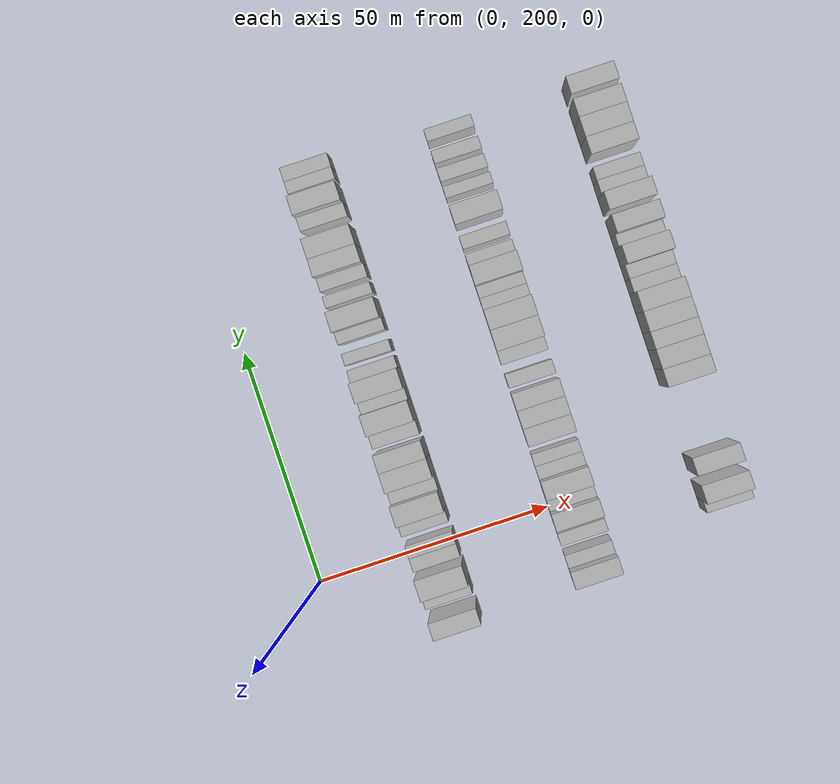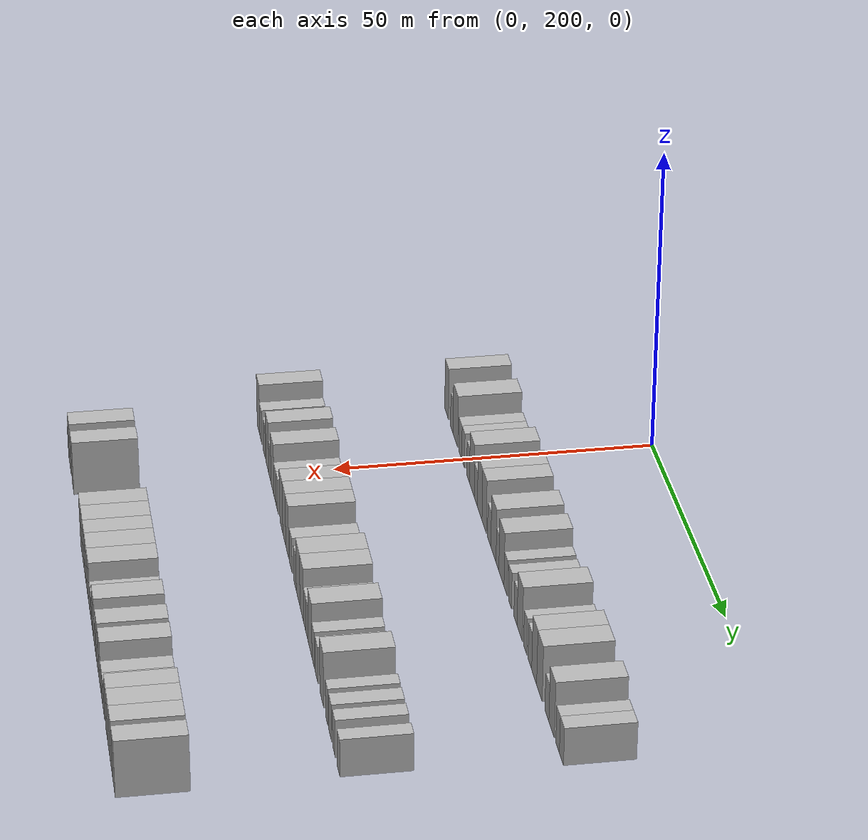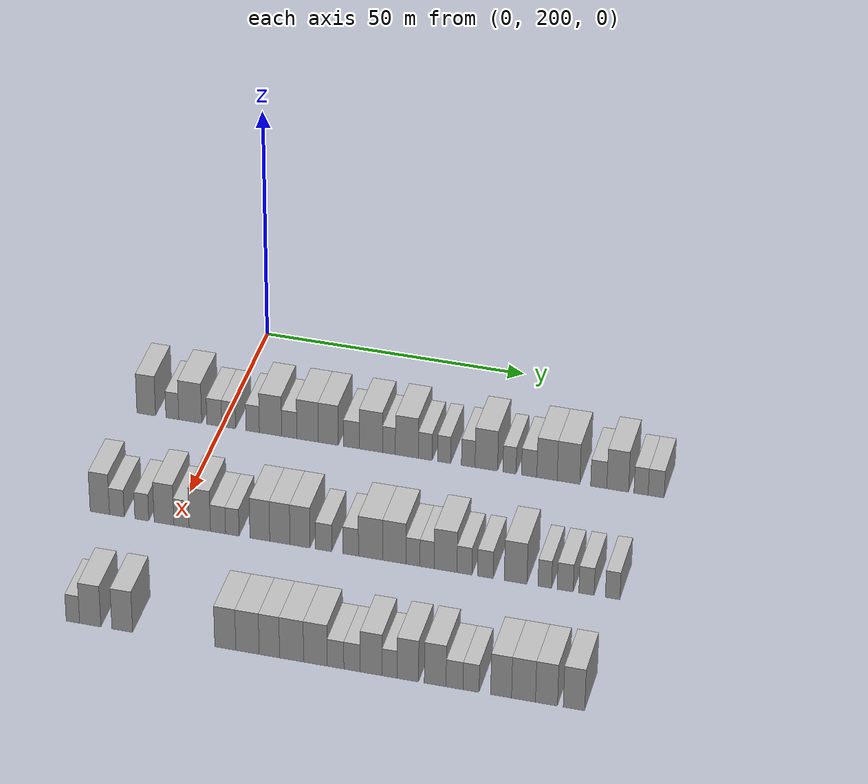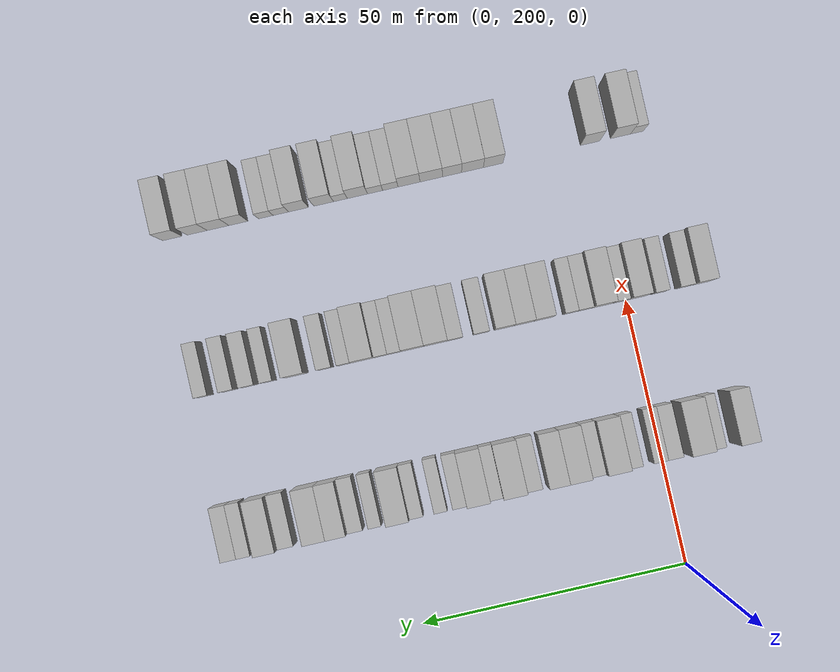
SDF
<sdf version="1.6">
 <world name="default">
  <model name="building_117">
   <static>1</static>
   <pose>25.0000 185.3387 0 0.000000 0.000000 0.000000</pose>
   <link name="link">
    <pose>0 0 4.50 0 0 0</pose>
    <collision name="collision"><geometry><box><size>10.0000 3.6014 9.0000</size></box></geometry></collision>
    <visual name="visual">
     <cast_shadows>0</cast_shadows>
     <geometry><box><size>10.0000 3.6014 9.0000</size></box></geometry>
     <material>
      <script>
       <uri>model://HANNAS_wall/materials/scripts</uri>
       <uri>model://HANNAS_wall/materials/textures</uri>
       <name>vrc/HANNAS_wall</name>
      </script>
     </material>
    </visual>
   </link>
  </model>
  <model name="building_118">
   <static>1</static>
   <pose>25.0000 190.3803 0 0.000000 0.000000 0.000000</pose>
   <link name="link">
    <pose>0 0 3.00 0 0 0</pose>
    <collision name="collision"><geometry><box><size>10.0000 2.4819 6.0000</size></box></geometry></collision>
    <visual name="visual">
     <cast_shadows>0</cast_shadows>
     <geometry><box><size>10.0000 2.4819 6.0000</size></box></geometry>
     <material>
      <script>
       <uri>model://HANNAS_wall/materials/scripts</uri>
       <uri>model://HANNAS_wall/materials/textures</uri>
       <name>vrc/HANNAS_wall</name>
      </script>
     </material>
    </visual>
   </link>
  </model>
  <model name="building_119">
   <static>1</static>
   <pose>25.0000 193.8289 0 0.000000 0.000000 0.000000</pose>
   <link name="link">
    <pose>0 0 4.50 0 0 0</pose>
    <collision name="collision"><geometry><box><size>10.0000 4.4153 9.0000</size></box></geometry></collision>
    <visual name="visual">
     <cast_shadows>0</cast_shadows>
     <geometry><box><size>10.0000 4.4153 9.0000</size></box></geometry>
     <material>
      <script>
       <uri>model://HANNAS_wall/materials/scripts</uri>
       <uri>model://HANNAS_wall/materials/textures</uri>
       <name>vrc/HANNAS_wall</name>
      </script>
     </material>
    </visual>
   </link>
  </model>
  <model name="building_120">
   <static>1</static>
   <pose>25.0000 198.4600 0 0.000000 0.000000 0.000000</pose>
   <link name="link">
    <pose>0 0 3.00 0 0 0</pose>
    <collision name="collision"><geometry><box><size>10.0000 2.8469 6.0000</size></box></geometry></collision>
    <visual name="visual">
     <cast_shadows>0</cast_shadows>
     <geometry><box><size>10.0000 2.8469 6.0000</size></box></geometry>
     <material>
      <script>
       <uri>model://HANNAS_wall/materials/scripts</uri>
       <uri>model://HANNAS_wall/materials/textures</uri>
       <name>vrc/HANNAS_wall</name>
      </script>
     </material>
    </visual>
   </link>
  </model>
  <model name="building_121">
   <static>1</static>
   <pose>25.0000 201.2084 0 0.000000 0.000000 0.000000</pose>
   <link name="link">
    <pose>0 0 3.00 0 0 0</pose>
    <collision name="collision"><geometry><box><size>10.0000 2.6499 6.0000</size></box></geometry></collision>
    <visual name="visual">
     <cast_shadows>0</cast_shadows>
     <geometry><box><size>10.0000 2.6499 6.0000</size></box></geometry>
     <material>
      <script>
       <uri>model://HANNAS_wall/materials/scripts</uri>
       <uri>model://HANNAS_wall/materials/textures</uri>
       <name>vrc/HANNAS_wall</name>
      </script>
     </material>
    </visual>
   </link>
  </model>
  <model name="building_122">
   <static>1</static>
   <pose>25.0000 205.8074 0 0.000000 0.000000 0.000000</pose>
   <link name="link">
    <pose>0 0 3.00 0 0 0</pose>
    <collision name="collision"><geometry><box><size>10.0000 2.5482 6.0000</size></box></geometry></collision>
    <visual name="visual">
     <cast_shadows>0</cast_shadows>
     <geometry><box><size>10.0000 2.5482 6.0000</size></box></geometry>
     <material>
      <script>
       <uri>model://HANNAS_wall/materials/scripts</uri>
       <uri>model://HANNAS_wall/materials/textures</uri>
       <name>vrc/HANNAS_wall</name>
      </script>
     </material>
    </visual>
   </link>
  </model>
  <model name="building_123">
   <static>1</static>
   <pose>25.0000 209.2179 0 0.000000 0.000000 0.000000</pose>
   <link name="link">
    <pose>0 0 4.50 0 0 0</pose>
    <collision name="collision"><geometry><box><size>10.0000 4.2728 9.0000</size></box></geometry></collision>
    <visual name="visual">
     <cast_shadows>0</cast_shadows>
     <geometry><box><size>10.0000 4.2728 9.0000</size></box></geometry>
     <material>
      <script>
       <uri>model://HANNAS_wall/materials/scripts</uri>
       <uri>model://HANNAS_wall/materials/textures</uri>
       <name>vrc/HANNAS_wall</name>
      </script>
     </material>
    </visual>
   </link>
  </model>
  <model name="building_124">
   <static>1</static>
   <pose>25.0000 212.7921 0 0.000000 0.000000 0.000000</pose>
   <link name="link">
    <pose>0 0 3.00 0 0 0</pose>
    <collision name="collision"><geometry><box><size>10.0000 2.8754 6.0000</size></box></geometry></collision>
    <visual name="visual">
     <cast_shadows>0</cast_shadows>
     <geometry><box><size>10.0000 2.8754 6.0000</size></box></geometry>
     <material>
      <script>
       <uri>model://HANNAS_wall/materials/scripts</uri>
       <uri>model://HANNAS_wall/materials/textures</uri>
       <name>vrc/HANNAS_wall</name>
      </script>
     </material>
    </visual>
   </link>
  </model>
  <model name="building_125">
   <static>1</static>
   <pose>25.0000 216.2802 0 0.000000 0.000000 0.000000</pose>
   <link name="link">
    <pose>0 0 4.50 0 0 0</pose>
    <collision name="collision"><geometry><box><size>10.0000 4.1009 9.0000</size></box></geometry></collision>
    <visual name="visual">
     <cast_shadows>0</cast_shadows>
     <geometry><box><size>10.0000 4.1009 9.0000</size></box></geometry>
     <material>
      <script>
       <uri>model://HANNAS_wall/materials/scripts</uri>
       <uri>model://HANNAS_wall/materials/textures</uri>
       <name>vrc/HANNAS_wall</name>
      </script>
     </material>
    </visual>
   </link>
  </model>
  <model name="building_126">
   <static>1</static>
   <pose>25.0000 220.2173 0 0.000000 0.000000 0.000000</pose>
   <link name="link">
    <pose>0 0 4.50 0 0 0</pose>
    <collision name="collision"><geometry><box><size>10.0000 3.7733 9.0000</size></box></geometry></collision>
    <visual name="visual">
     <cast_shadows>0</cast_shadows>
     <geometry><box><size>10.0000 3.7733 9.0000</size></box></geometry>
     <material>
      <script>
       <uri>model://HANNAS_wall/materials/scripts</uri>
       <uri>model://HANNAS_wall/materials/textures</uri>
       <name>vrc/HANNAS_wall</name>
      </script>
     </material>
    </visual>
   </link>
  </model>
  <model name="building_127">
   <static>1</static>
   <pose>25.0000 224.5908 0 0.000000 0.000000 0.000000</pose>
   <link name="link">
    <pose>0 0 3.00 0 0 0</pose>
    <collision name="collision"><geometry><box><size>10.0000 2.9738 6.0000</size></box></geometry></collision>
    <visual name="visual">
     <cast_shadows>0</cast_shadows>
     <geometry><box><size>10.0000 2.9738 6.0000</size></box></geometry>
     <material>
      <script>
       <uri>model://HANNAS_wall/materials/scripts</uri>
       <uri>model://HANNAS_wall/materials/textures</uri>
       <name>vrc/HANNAS_wall</name>
      </script>
     </material>
    </visual>
   </link>
  </model>
  <model name="building_128">
   <static>1</static>
   <pose>25.0000 228.2738 0 0.000000 0.000000 0.000000</pose>
   <link name="link">
    <pose>0 0 4.50 0 0 0</pose>
    <collision name="collision"><geometry><box><size>10.0000 4.3921 9.0000</size></box></geometry></collision>
    <visual name="visual">
     <cast_shadows>0</cast_shadows>
     <geometry><box><size>10.0000 4.3921 9.0000</size></box></geometry>
     <material>
      <script>
       <uri>model://HANNAS_wall/materials/scripts</uri>
       <uri>model://HANNAS_wall/materials/textures</uri>
       <name>vrc/HANNAS_wall</name>
      </script>
     </material>
    </visual>
   </link>
  </model>
  <model name="building_129">
   <static>1</static>
   <pose>25.0000 231.6826 0 0.000000 0.000000 0.000000</pose>
   <link name="link">
    <pose>0 0 3.00 0 0 0</pose>
    <collision name="collision"><geometry><box><size>10.0000 2.4256 6.0000</size></box></geometry></collision>
    <visual name="visual">
     <cast_shadows>0</cast_shadows>
     <geometry><box><size>10.0000 2.4256 6.0000</size></box></geometry>
     <material>
      <script>
       <uri>model://HANNAS_wall/materials/scripts</uri>
       <uri>model://HANNAS_wall/materials/textures</uri>
       <name>vrc/HANNAS_wall</name>
      </script>
     </material>
    </visual>
   </link>
  </model>
  <model name="building_130">
   <static>1</static>
   <pose>25.0000 235.0462 0 0.000000 0.000000 0.000000</pose>
   <link name="link">
    <pose>0 0 4.50 0 0 0</pose>
    <collision name="collision"><geometry><box><size>10.0000 4.3017 9.0000</size></box></geometry></collision>
    <visual name="visual">
     <cast_shadows>0</cast_shadows>
     <geometry><box><size>10.0000 4.3017 9.0000</size></box></geometry>
     <material>
      <script>
       <uri>model://HANNAS_wall/materials/scripts</uri>
       <uri>model://HANNAS_wall/materials/textures</uri>
       <name>vrc/HANNAS_wall</name>
      </script>
     </material>
    </visual>
   </link>
  </model>
  <model name="building_131">
   <static>1</static>
   <pose>25.0000 238.5152 0 0.000000 0.000000 0.000000</pose>
   <link name="link">
    <pose>0 0 3.00 0 0 0</pose>
    <collision name="collision"><geometry><box><size>10.0000 2.6362 6.0000</size></box></geometry></collision>
    <visual name="visual">
     <cast_shadows>0</cast_shadows>
     <geometry><box><size>10.0000 2.6362 6.0000</size></box></geometry>
     <material>
      <script>
       <uri>model://HANNAS_wall/materials/scripts</uri>
       <uri>model://HANNAS_wall/materials/textures</uri>
       <name>vrc/HANNAS_wall</name>
      </script>
     </material>
    </visual>
   </link>
  </model>
  <model name="building_132">
   <static>1</static>
   <pose>25.0000 242.0603 0 0.000000 0.000000 0.000000</pose>
   <link name="link">
    <pose>0 0 3.00 0 0 0</pose>
    <collision name="collision"><geometry><box><size>10.0000 2.4539 6.0000</size></box></geometry></collision>
    <visual name="visual">
     <cast_shadows>0</cast_shadows>
     <geometry><box><size>10.0000 2.4539 6.0000</size></box></geometry>
     <material>
      <script>
       <uri>model://HANNAS_wall/materials/scripts</uri>
       <uri>model://HANNAS_wall/materials/textures</uri>
       <name>vrc/HANNAS_wall</name>
      </script>
     </material>
    </visual>
   </link>
  </model>
  <model name="building_133">
   <static>1</static>
   <pose>25.0000 246.5607 0 0.000000 0.000000 0.000000</pose>
   <link name="link">
    <pose>0 0 3.00 0 0 0</pose>
    <collision name="collision"><geometry><box><size>10.0000 2.5470 6.0000</size></box></geometry></collision>
    <visual name="visual">
     <cast_shadows>0</cast_shadows>
     <geometry><box><size>10.0000 2.5470 6.0000</size></box></geometry>
     <material>
      <script>
       <uri>model://HANNAS_wall/materials/scripts</uri>
       <uri>model://HANNAS_wall/materials/textures</uri>
       <name>vrc/HANNAS_wall</name>
      </script>
     </material>
    </visual>
   </link>
  </model>
  <model name="building_134">
   <static>1</static>
   <pose>25.0000 249.9377 0 0.000000 0.000000 0.000000</pose>
   <link name="link">
    <pose>0 0 4.50 0 0 0</pose>
    <collision name="collision"><geometry><box><size>10.0000 4.2069 9.0000</size></box></geometry></collision>
    <visual name="visual">
     <cast_shadows>0</cast_shadows>
     <geometry><box><size>10.0000 4.2069 9.0000</size></box></geometry>
     <material>
      <script>
       <uri>model://HANNAS_wall/materials/scripts</uri>
       <uri>model://HANNAS_wall/materials/textures</uri>
       <name>vrc/HANNAS_wall</name>
      </script>
     </material>
    </visual>
   </link>
  </model>
  <model name="building_135">
   <static>1</static>
   <pose>25.0000 254.2659 0 0.000000 0.000000 0.000000</pose>
   <link name="link">
    <pose>0 0 3.00 0 0 0</pose>
    <collision name="collision"><geometry><box><size>10.0000 2.4493 6.0000</size></box></geometry></collision>
    <visual name="visual">
     <cast_shadows>0</cast_shadows>
     <geometry><box><size>10.0000 2.4493 6.0000</size></box></geometry>
     <material>
      <script>
       <uri>model://HANNAS_wall/materials/scripts</uri>
       <uri>model://HANNAS_wall/materials/textures</uri>
       <name>vrc/HANNAS_wall</name>
      </script>
     </material>
    </visual>
   </link>
  </model>
  <model name="building_136">
   <static>1</static>
   <pose>25.0000 257.9143 0 0.000000 0.000000 0.000000</pose>
   <link name="link">
    <pose>0 0 3.00 0 0 0</pose>
    <collision name="collision"><geometry><box><size>10.0000 2.8474 6.0000</size></box></geometry></collision>
    <visual name="visual">
     <cast_shadows>0</cast_shadows>
     <geometry><box><size>10.0000 2.8474 6.0000</size></box></geometry>
     <material>
      <script>
       <uri>model://HANNAS_wall/materials/scripts</uri>
       <uri>model://HANNAS_wall/materials/textures</uri>
       <name>vrc/HANNAS_wall</name>
      </script>
     </material>
    </visual>
   </link>
  </model>
  <model name="building_137">
   <static>1</static>
   <pose>25.0000 261.2220 0 0.000000 0.000000 0.000000</pose>
   <link name="link">
    <pose>0 0 4.50 0 0 0</pose>
    <collision name="collision"><geometry><box><size>10.0000 3.7680 9.0000</size></box></geometry></collision>
    <visual name="visual">
     <cast_shadows>0</cast_shadows>
     <geometry><box><size>10.0000 3.7680 9.0000</size></box></geometry>
     <material>
      <script>
       <uri>model://HANNAS_wall/materials/scripts</uri>
       <uri>model://HANNAS_wall/materials/textures</uri>
       <name>vrc/HANNAS_wall</name>
      </script>
     </material>
    </visual>
   </link>
  </model>
  <model name="building_138">
   <static>1</static>
   <pose>25.0000 265.2028 0 0.000000 0.000000 0.000000</pose>
   <link name="link">
    <pose>0 0 4.50 0 0 0</pose>
    <collision name="collision"><geometry><box><size>10.0000 4.1938 9.0000</size></box></geometry></collision>
    <visual name="visual">
     <cast_shadows>0</cast_shadows>
     <geometry><box><size>10.0000 4.1938 9.0000</size></box></geometry>
     <material>
      <script>
       <uri>model://HANNAS_wall/materials/scripts</uri>
       <uri>model://HANNAS_wall/materials/textures</uri>
       <name>vrc/HANNAS_wall</name>
      </script>
     </material>
    </visual>
   </link>
  </model>
  <model name="building_139">
   <static>1</static>
   <pose>25.0000 270.7852 0 0.000000 0.000000 0.000000</pose>
   <link name="link">
    <pose>0 0 3.00 0 0 0</pose>
    <collision name="collision"><geometry><box><size>10.0000 2.9710 6.0000</size></box></geometry></collision>
    <visual name="visual">
     <cast_shadows>0</cast_shadows>
     <geometry><box><size>10.0000 2.9710 6.0000</size></box></geometry>
     <material>
      <script>
       <uri>model://HANNAS_wall/materials/scripts</uri>
       <uri>model://HANNAS_wall/materials/textures</uri>
       <name>vrc/HANNAS_wall</name>
      </script>
     </material>
    </visual>
   </link>
  </model>
  <model name="building_140">
   <static>1</static>
   <pose>25.0000 274.2705 0 0.000000 0.000000 0.000000</pose>
   <link name="link">
    <pose>0 0 4.50 0 0 0</pose>
    <collision name="collision"><geometry><box><size>10.0000 3.9996 9.0000</size></box></geometry></collision>
    <visual name="visual">
     <cast_shadows>0</cast_shadows>
     <geometry><box><size>10.0000 3.9996 9.0000</size></box></geometry>
     <material>
      <script>
       <uri>model://HANNAS_wall/materials/scripts</uri>
       <uri>model://HANNAS_wall/materials/textures</uri>
       <name>vrc/HANNAS_wall</name>
      </script>
     </material>
    </visual>
   </link>
  </model>
  <model name="building_141">
   <static>1</static>
   <pose>25.0000 278.5704 0 0.000000 0.000000 0.000000</pose>
   <link name="link">
    <pose>0 0 3.00 0 0 0</pose>
    <collision name="collision"><geometry><box><size>10.0000 2.6001 6.0000</size></box></geometry></collision>
    <visual name="visual">
     <cast_shadows>0</cast_shadows>
     <geometry><box><size>10.0000 2.6001 6.0000</size></box></geometry>
     <material>
      <script>
       <uri>model://HANNAS_wall/materials/scripts</uri>
       <uri>model://HANNAS_wall/materials/textures</uri>
       <name>vrc/HANNAS_wall</name>
      </script>
     </material>
    </visual>
   </link>
  </model>
  <model name="building_142">
   <static>1</static>
   <pose>25.0000 281.3389 0 0.000000 0.000000 0.000000</pose>
   <link name="link">
    <pose>0 0 3.00 0 0 0</pose>
    <collision name="collision"><geometry><box><size>10.0000 2.9369 6.0000</size></box></geometry></collision>
    <visual name="visual">
     <cast_shadows>0</cast_shadows>
     <geometry><box><size>10.0000 2.9369 6.0000</size></box></geometry>
     <material>
      <script>
       <uri>model://HANNAS_wall/materials/scripts</uri>
       <uri>model://HANNAS_wall/materials/textures</uri>
       <name>vrc/HANNAS_wall</name>
      </script>
     </material>
    </visual>
   </link>
  </model>
  <model name="building_266">
   <static>1</static>
   <pose>55.0000 186.0896 0 0.000000 0.000000 0.000000</pose>
   <link name="link">
    <pose>0 0 4.50 0 0 0</pose>
    <collision name="collision"><geometry><box><size>10.0000 3.6190 9.0000</size></box></geometry></collision>
    <visual name="visual">
     <cast_shadows>0</cast_shadows>
     <geometry><box><size>10.0000 3.6190 9.0000</size></box></geometry>
     <material>
      <script>
       <uri>model://HANNAS_wall/materials/scripts</uri>
       <uri>model://HANNAS_wall/materials/textures</uri>
       <name>vrc/HANNAS_wall</name>
      </script>
     </material>
    </visual>
   </link>
  </model>
  <model name="building_267">
   <static>1</static>
   <pose>55.0000 189.2775 0 0.000000 0.000000 0.000000</pose>
   <link name="link">
    <pose>0 0 3.00 0 0 0</pose>
    <collision name="collision"><geometry><box><size>10.0000 2.7569 6.0000</size></box></geometry></collision>
    <visual name="visual">
     <cast_shadows>0</cast_shadows>
     <geometry><box><size>10.0000 2.7569 6.0000</size></box></geometry>
     <material>
      <script>
       <uri>model://HANNAS_wall/materials/scripts</uri>
       <uri>model://HANNAS_wall/materials/textures</uri>
       <name>vrc/HANNAS_wall</name>
      </script>
     </material>
    </visual>
   </link>
  </model>
  <model name="building_268">
   <static>1</static>
   <pose>55.0000 193.9606 0 0.000000 0.000000 0.000000</pose>
   <link name="link">
    <pose>0 0 3.00 0 0 0</pose>
    <collision name="collision"><geometry><box><size>10.0000 2.6093 6.0000</size></box></geometry></collision>
    <visual name="visual">
     <cast_shadows>0</cast_shadows>
     <geometry><box><size>10.0000 2.6093 6.0000</size></box></geometry>
     <material>
      <script>
       <uri>model://HANNAS_wall/materials/scripts</uri>
       <uri>model://HANNAS_wall/materials/textures</uri>
       <name>vrc/HANNAS_wall</name>
      </script>
     </material>
    </visual>
   </link>
  </model>
  <model name="building_269">
   <static>1</static>
   <pose>55.0000 198.1082 0 0.000000 0.000000 0.000000</pose>
   <link name="link">
    <pose>0 0 4.50 0 0 0</pose>
    <collision name="collision"><geometry><box><size>10.0000 3.6859 9.0000</size></box></geometry></collision>
    <visual name="visual">
     <cast_shadows>0</cast_shadows>
     <geometry><box><size>10.0000 3.6859 9.0000</size></box></geometry>
     <material>
      <script>
       <uri>model://HANNAS_wall/materials/scripts</uri>
       <uri>model://HANNAS_wall/materials/textures</uri>
       <name>vrc/HANNAS_wall</name>
      </script>
     </material>
    </visual>
   </link>
  </model>
  <model name="building_270">
   <static>1</static>
   <pose>55.0000 201.3612 0 0.000000 0.000000 0.000000</pose>
   <link name="link">
    <pose>0 0 3.00 0 0 0</pose>
    <collision name="collision"><geometry><box><size>10.0000 2.8202 6.0000</size></box></geometry></collision>
    <visual name="visual">
     <cast_shadows>0</cast_shadows>
     <geometry><box><size>10.0000 2.8202 6.0000</size></box></geometry>
     <material>
      <script>
       <uri>model://HANNAS_wall/materials/scripts</uri>
       <uri>model://HANNAS_wall/materials/textures</uri>
       <name>vrc/HANNAS_wall</name>
      </script>
     </material>
    </visual>
   </link>
  </model>
  <model name="building_271">
   <static>1</static>
   <pose>55.0000 204.7542 0 0.000000 0.000000 0.000000</pose>
   <link name="link">
    <pose>0 0 4.50 0 0 0</pose>
    <collision name="collision"><geometry><box><size>10.0000 3.9657 9.0000</size></box></geometry></collision>
    <visual name="visual">
     <cast_shadows>0</cast_shadows>
     <geometry><box><size>10.0000 3.9657 9.0000</size></box></geometry>
     <material>
      <script>
       <uri>model://HANNAS_wall/materials/scripts</uri>
       <uri>model://HANNAS_wall/materials/textures</uri>
       <name>vrc/HANNAS_wall</name>
      </script>
     </material>
    </visual>
   </link>
  </model>
  <model name="building_272">
   <static>1</static>
   <pose>55.0000 208.1378 0 0.000000 0.000000 0.000000</pose>
   <link name="link">
    <pose>0 0 3.00 0 0 0</pose>
    <collision name="collision"><geometry><box><size>10.0000 2.8016 6.0000</size></box></geometry></collision>
    <visual name="visual">
     <cast_shadows>0</cast_shadows>
     <geometry><box><size>10.0000 2.8016 6.0000</size></box></geometry>
     <material>
      <script>
       <uri>model://HANNAS_wall/materials/scripts</uri>
       <uri>model://HANNAS_wall/materials/textures</uri>
       <name>vrc/HANNAS_wall</name>
      </script>
     </material>
    </visual>
   </link>
  </model>
  <model name="building_273">
   <static>1</static>
   <pose>55.0000 210.7898 0 0.000000 0.000000 0.000000</pose>
   <link name="link">
    <pose>0 0 3.00 0 0 0</pose>
    <collision name="collision"><geometry><box><size>10.0000 2.5025 6.0000</size></box></geometry></collision>
    <visual name="visual">
     <cast_shadows>0</cast_shadows>
     <geometry><box><size>10.0000 2.5025 6.0000</size></box></geometry>
     <material>
      <script>
       <uri>model://HANNAS_wall/materials/scripts</uri>
       <uri>model://HANNAS_wall/materials/textures</uri>
       <name>vrc/HANNAS_wall</name>
      </script>
     </material>
    </visual>
   </link>
  </model>
  <model name="building_274">
   <static>1</static>
   <pose>55.0000 215.8672 0 0.000000 0.000000 0.000000</pose>
   <link name="link">
    <pose>0 0 4.50 0 0 0</pose>
    <collision name="collision"><geometry><box><size>10.0000 3.6524 9.0000</size></box></geometry></collision>
    <visual name="visual">
     <cast_shadows>0</cast_shadows>
     <geometry><box><size>10.0000 3.6524 9.0000</size></box></geometry>
     <material>
      <script>
       <uri>model://HANNAS_wall/materials/scripts</uri>
       <uri>model://HANNAS_wall/materials/textures</uri>
       <name>vrc/HANNAS_wall</name>
      </script>
     </material>
    </visual>
   </link>
  </model>
  <model name="building_275">
   <static>1</static>
   <pose>55.0000 219.5612 0 0.000000 0.000000 0.000000</pose>
   <link name="link">
    <pose>0 0 4.50 0 0 0</pose>
    <collision name="collision"><geometry><box><size>10.0000 3.7354 9.0000</size></box></geometry></collision>
    <visual name="visual">
     <cast_shadows>0</cast_shadows>
     <geometry><box><size>10.0000 3.7354 9.0000</size></box></geometry>
     <material>
      <script>
       <uri>model://HANNAS_wall/materials/scripts</uri>
       <uri>model://HANNAS_wall/materials/textures</uri>
       <name>vrc/HANNAS_wall</name>
      </script>
     </material>
    </visual>
   </link>
  </model>
  <model name="building_276">
   <static>1</static>
   <pose>55.0000 223.2713 0 0.000000 0.000000 0.000000</pose>
   <link name="link">
    <pose>0 0 4.50 0 0 0</pose>
    <collision name="collision"><geometry><box><size>10.0000 3.6849 9.0000</size></box></geometry></collision>
    <visual name="visual">
     <cast_shadows>0</cast_shadows>
     <geometry><box><size>10.0000 3.6849 9.0000</size></box></geometry>
     <material>
      <script>
       <uri>model://HANNAS_wall/materials/scripts</uri>
       <uri>model://HANNAS_wall/materials/textures</uri>
       <name>vrc/HANNAS_wall</name>
      </script>
     </material>
    </visual>
   </link>
  </model>
  <model name="building_277">
   <static>1</static>
   <pose>55.0000 227.5990 0 0.000000 0.000000 0.000000</pose>
   <link name="link">
    <pose>0 0 3.00 0 0 0</pose>
    <collision name="collision"><geometry><box><size>10.0000 2.9704 6.0000</size></box></geometry></collision>
    <visual name="visual">
     <cast_shadows>0</cast_shadows>
     <geometry><box><size>10.0000 2.9704 6.0000</size></box></geometry>
     <material>
      <script>
       <uri>model://HANNAS_wall/materials/scripts</uri>
       <uri>model://HANNAS_wall/materials/textures</uri>
       <name>vrc/HANNAS_wall</name>
      </script>
     </material>
    </visual>
   </link>
  </model>
  <model name="building_278">
   <static>1</static>
   <pose>55.0000 232.5211 0 0.000000 0.000000 0.000000</pose>
   <link name="link">
    <pose>0 0 3.00 0 0 0</pose>
    <collision name="collision"><geometry><box><size>10.0000 2.8738 6.0000</size></box></geometry></collision>
    <visual name="visual">
     <cast_shadows>0</cast_shadows>
     <geometry><box><size>10.0000 2.8738 6.0000</size></box></geometry>
     <material>
      <script>
       <uri>model://HANNAS_wall/materials/scripts</uri>
       <uri>model://HANNAS_wall/materials/textures</uri>
       <name>vrc/HANNAS_wall</name>
      </script>
     </material>
    </visual>
   </link>
  </model>
  <model name="building_279">
   <static>1</static>
   <pose>55.0000 236.1604 0 0.000000 0.000000 0.000000</pose>
   <link name="link">
    <pose>0 0 4.50 0 0 0</pose>
    <collision name="collision"><geometry><box><size>10.0000 4.4049 9.0000</size></box></geometry></collision>
    <visual name="visual">
     <cast_shadows>0</cast_shadows>
     <geometry><box><size>10.0000 4.4049 9.0000</size></box></geometry>
     <material>
      <script>
       <uri>model://HANNAS_wall/materials/scripts</uri>
       <uri>model://HANNAS_wall/materials/textures</uri>
       <name>vrc/HANNAS_wall</name>
      </script>
     </material>
    </visual>
   </link>
  </model>
  <model name="building_280">
   <static>1</static>
   <pose>55.0000 240.4899 0 0.000000 0.000000 0.000000</pose>
   <link name="link">
    <pose>0 0 4.50 0 0 0</pose>
    <collision name="collision"><geometry><box><size>10.0000 4.2541 9.0000</size></box></geometry></collision>
    <visual name="visual">
     <cast_shadows>0</cast_shadows>
     <geometry><box><size>10.0000 4.2541 9.0000</size></box></geometry>
     <material>
      <script>
       <uri>model://HANNAS_wall/materials/scripts</uri>
       <uri>model://HANNAS_wall/materials/textures</uri>
       <name>vrc/HANNAS_wall</name>
      </script>
     </material>
    </visual>
   </link>
  </model>
  <model name="building_281">
   <static>1</static>
   <pose>55.0000 243.8965 0 0.000000 0.000000 0.000000</pose>
   <link name="link">
    <pose>0 0 3.00 0 0 0</pose>
    <collision name="collision"><geometry><box><size>10.0000 2.5591 6.0000</size></box></geometry></collision>
    <visual name="visual">
     <cast_shadows>0</cast_shadows>
     <geometry><box><size>10.0000 2.5591 6.0000</size></box></geometry>
     <material>
      <script>
       <uri>model://HANNAS_wall/materials/scripts</uri>
       <uri>model://HANNAS_wall/materials/textures</uri>
       <name>vrc/HANNAS_wall</name>
      </script>
     </material>
    </visual>
   </link>
  </model>
  <model name="building_282">
   <static>1</static>
   <pose>55.0000 246.4424 0 0.000000 0.000000 0.000000</pose>
   <link name="link">
    <pose>0 0 3.00 0 0 0</pose>
    <collision name="collision"><geometry><box><size>10.0000 2.5328 6.0000</size></box></geometry></collision>
    <visual name="visual">
     <cast_shadows>0</cast_shadows>
     <geometry><box><size>10.0000 2.5328 6.0000</size></box></geometry>
     <material>
      <script>
       <uri>model://HANNAS_wall/materials/scripts</uri>
       <uri>model://HANNAS_wall/materials/textures</uri>
       <name>vrc/HANNAS_wall</name>
      </script>
     </material>
    </visual>
   </link>
  </model>
  <model name="building_283">
   <static>1</static>
   <pose>55.0000 249.7902 0 0.000000 0.000000 0.000000</pose>
   <link name="link">
    <pose>0 0 4.50 0 0 0</pose>
    <collision name="collision"><geometry><box><size>10.0000 4.1628 9.0000</size></box></geometry></collision>
    <visual name="visual">
     <cast_shadows>0</cast_shadows>
     <geometry><box><size>10.0000 4.1628 9.0000</size></box></geometry>
     <material>
      <script>
       <uri>model://HANNAS_wall/materials/scripts</uri>
       <uri>model://HANNAS_wall/materials/textures</uri>
       <name>vrc/HANNAS_wall</name>
      </script>
     </material>
    </visual>
   </link>
  </model>
  <model name="building_284">
   <static>1</static>
   <pose>55.0000 253.2190 0 0.000000 0.000000 0.000000</pose>
   <link name="link">
    <pose>0 0 3.00 0 0 0</pose>
    <collision name="collision"><geometry><box><size>10.0000 2.6947 6.0000</size></box></geometry></collision>
    <visual name="visual">
     <cast_shadows>0</cast_shadows>
     <geometry><box><size>10.0000 2.6947 6.0000</size></box></geometry>
     <material>
      <script>
       <uri>model://HANNAS_wall/materials/scripts</uri>
       <uri>model://HANNAS_wall/materials/textures</uri>
       <name>vrc/HANNAS_wall</name>
      </script>
     </material>
    </visual>
   </link>
  </model>
  <model name="building_285">
   <static>1</static>
   <pose>55.0000 256.9755 0 0.000000 0.000000 0.000000</pose>
   <link name="link">
    <pose>0 0 3.00 0 0 0</pose>
    <collision name="collision"><geometry><box><size>10.0000 2.8183 6.0000</size></box></geometry></collision>
    <visual name="visual">
     <cast_shadows>0</cast_shadows>
     <geometry><box><size>10.0000 2.8183 6.0000</size></box></geometry>
     <material>
      <script>
       <uri>model://HANNAS_wall/materials/scripts</uri>
       <uri>model://HANNAS_wall/materials/textures</uri>
       <name>vrc/HANNAS_wall</name>
      </script>
     </material>
    </visual>
   </link>
  </model>
  <model name="building_286">
   <static>1</static>
   <pose>55.0000 262.4130 0 0.000000 0.000000 0.000000</pose>
   <link name="link">
    <pose>0 0 4.50 0 0 0</pose>
    <collision name="collision"><geometry><box><size>10.0000 4.0568 9.0000</size></box></geometry></collision>
    <visual name="visual">
     <cast_shadows>0</cast_shadows>
     <geometry><box><size>10.0000 4.0568 9.0000</size></box></geometry>
     <material>
      <script>
       <uri>model://HANNAS_wall/materials/scripts</uri>
       <uri>model://HANNAS_wall/materials/textures</uri>
       <name>vrc/HANNAS_wall</name>
      </script>
     </material>
    </visual>
   </link>
  </model>
  <model name="building_287">
   <static>1</static>
   <pose>55.0000 267.6552 0 0.000000 0.000000 0.000000</pose>
   <link name="link">
    <pose>0 0 3.00 0 0 0</pose>
    <collision name="collision"><geometry><box><size>10.0000 2.4277 6.0000</size></box></geometry></collision>
    <visual name="visual">
     <cast_shadows>0</cast_shadows>
     <geometry><box><size>10.0000 2.4277 6.0000</size></box></geometry>
     <material>
      <script>
       <uri>model://HANNAS_wall/materials/scripts</uri>
       <uri>model://HANNAS_wall/materials/textures</uri>
       <name>vrc/HANNAS_wall</name>
      </script>
     </material>
    </visual>
   </link>
  </model>
  <model name="building_288">
   <static>1</static>
   <pose>55.0000 271.3046 0 0.000000 0.000000 0.000000</pose>
   <link name="link">
    <pose>0 0 3.00 0 0 0</pose>
    <collision name="collision"><geometry><box><size>10.0000 2.8711 6.0000</size></box></geometry></collision>
    <visual name="visual">
     <cast_shadows>0</cast_shadows>
     <geometry><box><size>10.0000 2.8711 6.0000</size></box></geometry>
     <material>
      <script>
       <uri>model://HANNAS_wall/materials/scripts</uri>
       <uri>model://HANNAS_wall/materials/textures</uri>
       <name>vrc/HANNAS_wall</name>
      </script>
     </material>
    </visual>
   </link>
  </model>
  <model name="building_289">
   <static>1</static>
   <pose>55.0000 275.0987 0 0.000000 0.000000 0.000000</pose>
   <link name="link">
    <pose>0 0 3.00 0 0 0</pose>
    <collision name="collision"><geometry><box><size>10.0000 2.7171 6.0000</size></box></geometry></collision>
    <visual name="visual">
     <cast_shadows>0</cast_shadows>
     <geometry><box><size>10.0000 2.7171 6.0000</size></box></geometry>
     <material>
      <script>
       <uri>model://HANNAS_wall/materials/scripts</uri>
       <uri>model://HANNAS_wall/materials/textures</uri>
       <name>vrc/HANNAS_wall</name>
      </script>
     </material>
    </visual>
   </link>
  </model>
  <model name="building_290">
   <static>1</static>
   <pose>55.0000 279.7479 0 0.000000 0.000000 0.000000</pose>
   <link name="link">
    <pose>0 0 3.00 0 0 0</pose>
    <collision name="collision"><geometry><box><size>10.0000 2.5813 6.0000</size></box></geometry></collision>
    <visual name="visual">
     <cast_shadows>0</cast_shadows>
     <geometry><box><size>10.0000 2.5813 6.0000</size></box></geometry>
     <material>
      <script>
       <uri>model://HANNAS_wall/materials/scripts</uri>
       <uri>model://HANNAS_wall/materials/textures</uri>
       <name>vrc/HANNAS_wall</name>
      </script>
     </material>
    </visual>
   </link>
  </model>
  <model name="building_409">
   <static>1</static>
   <pose>85.0000 190.9737 0 0.000000 0.000000 0.000000</pose>
   <link name="link">
    <pose>0 0 3.00 0 0 0</pose>
    <collision name="collision"><geometry><box><size>10.0000 2.4354 6.0000</size></box></geometry></collision>
    <visual name="visual">
     <cast_shadows>0</cast_shadows>
     <geometry><box><size>10.0000 2.4354 6.0000</size></box></geometry>
     <material>
      <script>
       <uri>model://HANNAS_wall/materials/scripts</uri>
       <uri>model://HANNAS_wall/materials/textures</uri>
       <name>vrc/HANNAS_wall</name>
      </script>
     </material>
    </visual>
   </link>
  </model>
  <model name="building_410">
   <static>1</static>
   <pose>85.0000 194.1133 0 0.000000 0.000000 0.000000</pose>
   <link name="link">
    <pose>0 0 4.50 0 0 0</pose>
    <collision name="collision"><geometry><box><size>10.0000 3.8438 9.0000</size></box></geometry></collision>
    <visual name="visual">
     <cast_shadows>0</cast_shadows>
     <geometry><box><size>10.0000 3.8438 9.0000</size></box></geometry>
     <material>
      <script>
       <uri>model://HANNAS_wall/materials/scripts</uri>
       <uri>model://HANNAS_wall/materials/textures</uri>
       <name>vrc/HANNAS_wall</name>
      </script>
     </material>
    </visual>
   </link>
  </model>
  <model name="building_411">
   <static>1</static>
   <pose>85.0000 199.9096 0 0.000000 0.000000 0.000000</pose>
   <link name="link">
    <pose>0 0 4.50 0 0 0</pose>
    <collision name="collision"><geometry><box><size>10.0000 3.7486 9.0000</size></box></geometry></collision>
    <visual name="visual">
     <cast_shadows>0</cast_shadows>
     <geometry><box><size>10.0000 3.7486 9.0000</size></box></geometry>
     <material>
      <script>
       <uri>model://HANNAS_wall/materials/scripts</uri>
       <uri>model://HANNAS_wall/materials/textures</uri>
       <name>vrc/HANNAS_wall</name>
      </script>
     </material>
    </visual>
   </link>
  </model>
  <model name="building_412">
   <static>1</static>
   <pose>85.0000 218.4073 0 0.000000 0.000000 0.000000</pose>
   <link name="link">
    <pose>0 0 4.50 0 0 0</pose>
    <collision name="collision"><geometry><box><size>10.0000 3.7490 9.0000</size></box></geometry></collision>
    <visual name="visual">
     <cast_shadows>0</cast_shadows>
     <geometry><box><size>10.0000 3.7490 9.0000</size></box></geometry>
     <material>
      <script>
       <uri>model://HANNAS_wall/materials/scripts</uri>
       <uri>model://HANNAS_wall/materials/textures</uri>
       <name>vrc/HANNAS_wall</name>
      </script>
     </material>
    </visual>
   </link>
  </model>
  <model name="building_413">
   <static>1</static>
   <pose>85.0000 222.3605 0 0.000000 0.000000 0.000000</pose>
   <link name="link">
    <pose>0 0 4.50 0 0 0</pose>
    <collision name="collision"><geometry><box><size>10.0000 4.1573 9.0000</size></box></geometry></collision>
    <visual name="visual">
     <cast_shadows>0</cast_shadows>
     <geometry><box><size>10.0000 4.1573 9.0000</size></box></geometry>
     <material>
      <script>
       <uri>model://HANNAS_wall/materials/scripts</uri>
       <uri>model://HANNAS_wall/materials/textures</uri>
       <name>vrc/HANNAS_wall</name>
      </script>
     </material>
    </visual>
   </link>
  </model>
  <model name="building_414">
   <static>1</static>
   <pose>85.0000 226.2567 0 0.000000 0.000000 0.000000</pose>
   <link name="link">
    <pose>0 0 4.50 0 0 0</pose>
    <collision name="collision"><geometry><box><size>10.0000 3.6350 9.0000</size></box></geometry></collision>
    <visual name="visual">
     <cast_shadows>0</cast_shadows>
     <geometry><box><size>10.0000 3.6350 9.0000</size></box></geometry>
     <material>
      <script>
       <uri>model://HANNAS_wall/materials/scripts</uri>
       <uri>model://HANNAS_wall/materials/textures</uri>
       <name>vrc/HANNAS_wall</name>
      </script>
     </material>
    </visual>
   </link>
  </model>
  <model name="building_415">
   <static>1</static>
   <pose>85.0000 230.2065 0 0.000000 0.000000 0.000000</pose>
   <link name="link">
    <pose>0 0 4.50 0 0 0</pose>
    <collision name="collision"><geometry><box><size>10.0000 4.2646 9.0000</size></box></geometry></collision>
    <visual name="visual">
     <cast_shadows>0</cast_shadows>
     <geometry><box><size>10.0000 4.2646 9.0000</size></box></geometry>
     <material>
      <script>
       <uri>model://HANNAS_wall/materials/scripts</uri>
       <uri>model://HANNAS_wall/materials/textures</uri>
       <name>vrc/HANNAS_wall</name>
      </script>
     </material>
    </visual>
   </link>
  </model>
  <model name="building_416">
   <static>1</static>
   <pose>85.0000 234.4322 0 0.000000 0.000000 0.000000</pose>
   <link name="link">
    <pose>0 0 4.50 0 0 0</pose>
    <collision name="collision"><geometry><box><size>10.0000 4.1868 9.0000</size></box></geometry></collision>
    <visual name="visual">
     <cast_shadows>0</cast_shadows>
     <geometry><box><size>10.0000 4.1868 9.0000</size></box></geometry>
     <material>
      <script>
       <uri>model://HANNAS_wall/materials/scripts</uri>
       <uri>model://HANNAS_wall/materials/textures</uri>
       <name>vrc/HANNAS_wall</name>
      </script>
     </material>
    </visual>
   </link>
  </model>
  <model name="building_417">
   <static>1</static>
   <pose>85.0000 237.9888 0 0.000000 0.000000 0.000000</pose>
   <link name="link">
    <pose>0 0 3.00 0 0 0</pose>
    <collision name="collision"><geometry><box><size>10.0000 2.9264 6.0000</size></box></geometry></collision>
    <visual name="visual">
     <cast_shadows>0</cast_shadows>
     <geometry><box><size>10.0000 2.9264 6.0000</size></box></geometry>
     <material>
      <script>
       <uri>model://HANNAS_wall/materials/scripts</uri>
       <uri>model://HANNAS_wall/materials/textures</uri>
       <name>vrc/HANNAS_wall</name>
      </script>
     </material>
    </visual>
   </link>
  </model>
  <model name="building_418">
   <static>1</static>
   <pose>85.0000 240.8915 0 0.000000 0.000000 0.000000</pose>
   <link name="link">
    <pose>0 0 3.00 0 0 0</pose>
    <collision name="collision"><geometry><box><size>10.0000 2.8790 6.0000</size></box></geometry></collision>
    <visual name="visual">
     <cast_shadows>0</cast_shadows>
     <geometry><box><size>10.0000 2.8790 6.0000</size></box></geometry>
     <material>
      <script>
       <uri>model://HANNAS_wall/materials/scripts</uri>
       <uri>model://HANNAS_wall/materials/textures</uri>
       <name>vrc/HANNAS_wall</name>
      </script>
     </material>
    </visual>
   </link>
  </model>
  <model name="building_419">
   <static>1</static>
   <pose>85.0000 244.2564 0 0.000000 0.000000 0.000000</pose>
   <link name="link">
    <pose>0 0 4.50 0 0 0</pose>
    <collision name="collision"><geometry><box><size>10.0000 3.8507 9.0000</size></box></geometry></collision>
    <visual name="visual">
     <cast_shadows>0</cast_shadows>
     <geometry><box><size>10.0000 3.8507 9.0000</size></box></geometry>
     <material>
      <script>
       <uri>model://HANNAS_wall/materials/scripts</uri>
       <uri>model://HANNAS_wall/materials/textures</uri>
       <name>vrc/HANNAS_wall</name>
      </script>
     </material>
    </visual>
   </link>
  </model>
  <model name="building_420">
   <static>1</static>
   <pose>85.0000 247.4928 0 0.000000 0.000000 0.000000</pose>
   <link name="link">
    <pose>0 0 3.00 0 0 0</pose>
    <collision name="collision"><geometry><box><size>10.0000 2.6221 6.0000</size></box></geometry></collision>
    <visual name="visual">
     <cast_shadows>0</cast_shadows>
     <geometry><box><size>10.0000 2.6221 6.0000</size></box></geometry>
     <material>
      <script>
       <uri>model://HANNAS_wall/materials/scripts</uri>
       <uri>model://HANNAS_wall/materials/textures</uri>
       <name>vrc/HANNAS_wall</name>
      </script>
     </material>
    </visual>
   </link>
  </model>
  <model name="building_421">
   <static>1</static>
   <pose>85.0000 250.6854 0 0.000000 0.000000 0.000000</pose>
   <link name="link">
    <pose>0 0 4.50 0 0 0</pose>
    <collision name="collision"><geometry><box><size>10.0000 3.7631 9.0000</size></box></geometry></collision>
    <visual name="visual">
     <cast_shadows>0</cast_shadows>
     <geometry><box><size>10.0000 3.7631 9.0000</size></box></geometry>
     <material>
      <script>
       <uri>model://HANNAS_wall/materials/scripts</uri>
       <uri>model://HANNAS_wall/materials/textures</uri>
       <name>vrc/HANNAS_wall</name>
      </script>
     </material>
    </visual>
   </link>
  </model>
  <model name="building_422">
   <static>1</static>
   <pose>85.0000 255.4675 0 0.000000 0.000000 0.000000</pose>
   <link name="link">
    <pose>0 0 4.50 0 0 0</pose>
    <collision name="collision"><geometry><box><size>10.0000 3.8012 9.0000</size></box></geometry></collision>
    <visual name="visual">
     <cast_shadows>0</cast_shadows>
     <geometry><box><size>10.0000 3.8012 9.0000</size></box></geometry>
     <material>
      <script>
       <uri>model://HANNAS_wall/materials/scripts</uri>
       <uri>model://HANNAS_wall/materials/textures</uri>
       <name>vrc/HANNAS_wall</name>
      </script>
     </material>
    </visual>
   </link>
  </model>
  <model name="building_423">
   <static>1</static>
   <pose>85.0000 258.8415 0 0.000000 0.000000 0.000000</pose>
   <link name="link">
    <pose>0 0 3.00 0 0 0</pose>
    <collision name="collision"><geometry><box><size>10.0000 2.9469 6.0000</size></box></geometry></collision>
    <visual name="visual">
     <cast_shadows>0</cast_shadows>
     <geometry><box><size>10.0000 2.9469 6.0000</size></box></geometry>
     <material>
      <script>
       <uri>model://HANNAS_wall/materials/scripts</uri>
       <uri>model://HANNAS_wall/materials/textures</uri>
       <name>vrc/HANNAS_wall</name>
      </script>
     </material>
    </visual>
   </link>
  </model>
  <model name="building_424">
   <static>1</static>
   <pose>85.0000 261.7184 0 0.000000 0.000000 0.000000</pose>
   <link name="link">
    <pose>0 0 3.00 0 0 0</pose>
    <collision name="collision"><geometry><box><size>10.0000 2.8069 6.0000</size></box></geometry></collision>
    <visual name="visual">
     <cast_shadows>0</cast_shadows>
     <geometry><box><size>10.0000 2.8069 6.0000</size></box></geometry>
     <material>
      <script>
       <uri>model://HANNAS_wall/materials/scripts</uri>
       <uri>model://HANNAS_wall/materials/textures</uri>
       <name>vrc/HANNAS_wall</name>
      </script>
     </material>
    </visual>
   </link>
  </model>
  <model name="building_425">
   <static>1</static>
   <pose>85.0000 266.9345 0 0.000000 0.000000 0.000000</pose>
   <link name="link">
    <pose>0 0 4.50 0 0 0</pose>
    <collision name="collision"><geometry><box><size>10.0000 3.6253 9.0000</size></box></geometry></collision>
    <visual name="visual">
     <cast_shadows>0</cast_shadows>
     <geometry><box><size>10.0000 3.6253 9.0000</size></box></geometry>
     <material>
      <script>
       <uri>model://HANNAS_wall/materials/scripts</uri>
       <uri>model://HANNAS_wall/materials/textures</uri>
       <name>vrc/HANNAS_wall</name>
      </script>
     </material>
    </visual>
   </link>
  </model>
  <model name="building_426">
   <static>1</static>
   <pose>85.0000 270.8161 0 0.000000 0.000000 0.000000</pose>
   <link name="link">
    <pose>0 0 4.50 0 0 0</pose>
    <collision name="collision"><geometry><box><size>10.0000 4.1377 9.0000</size></box></geometry></collision>
    <visual name="visual">
     <cast_shadows>0</cast_shadows>
     <geometry><box><size>10.0000 4.1377 9.0000</size></box></geometry>
     <material>
      <script>
       <uri>model://HANNAS_wall/materials/scripts</uri>
       <uri>model://HANNAS_wall/materials/textures</uri>
       <name>vrc/HANNAS_wall</name>
      </script>
     </material>
    </visual>
   </link>
  </model>
  <model name="building_427">
   <static>1</static>
   <pose>85.0000 274.7837 0 0.000000 0.000000 0.000000</pose>
   <link name="link">
    <pose>0 0 4.50 0 0 0</pose>
    <collision name="collision"><geometry><box><size>10.0000 3.7975 9.0000</size></box></geometry></collision>
    <visual name="visual">
     <cast_shadows>0</cast_shadows>
     <geometry><box><size>10.0000 3.7975 9.0000</size></box></geometry>
     <material>
      <script>
       <uri>model://HANNAS_wall/materials/scripts</uri>
       <uri>model://HANNAS_wall/materials/textures</uri>
       <name>vrc/HANNAS_wall</name>
      </script>
     </material>
    </visual>
   </link>
  </model>
  <model name="building_428">
   <static>1</static>
   <pose>85.0000 279.5235 0 0.000000 0.000000 0.000000</pose>
   <link name="link">
    <pose>0 0 4.50 0 0 0</pose>
    <collision name="collision"><geometry><box><size>10.0000 3.6822 9.0000</size></box></geometry></collision>
    <visual name="visual">
     <cast_shadows>0</cast_shadows>
     <geometry><box><size>10.0000 3.6822 9.0000</size></box></geometry>
     <material>
      <script>
       <uri>model://HANNAS_wall/materials/scripts</uri>
       <uri>model://HANNAS_wall/materials/textures</uri>
       <name>vrc/HANNAS_wall</name>
      </script>
     </material>
    </visual>
   </link>
  </model>
 </world>
</sdf>
